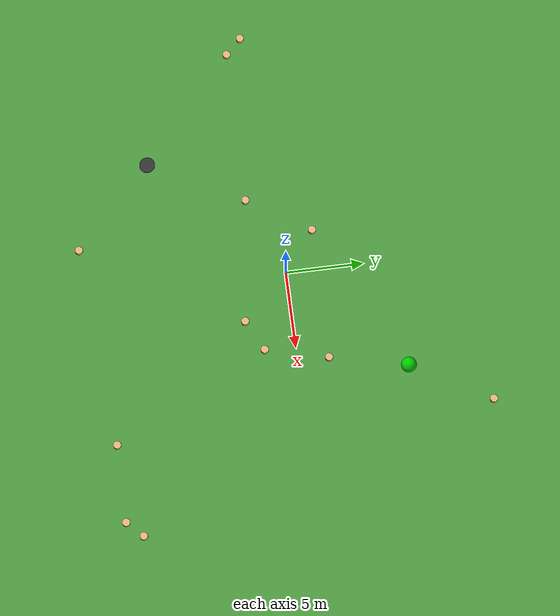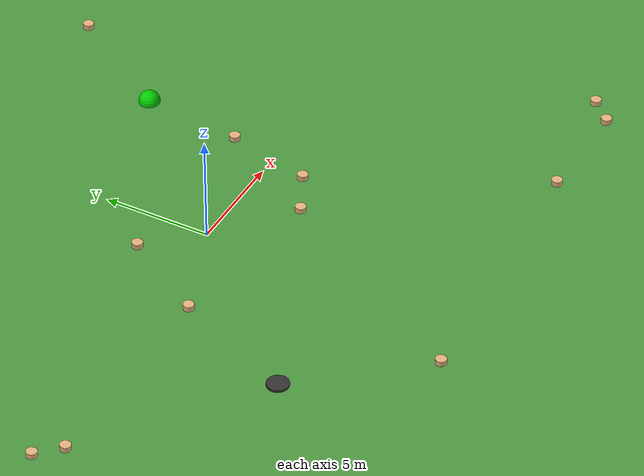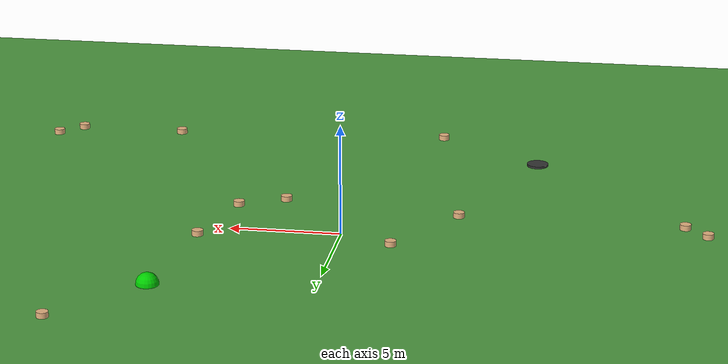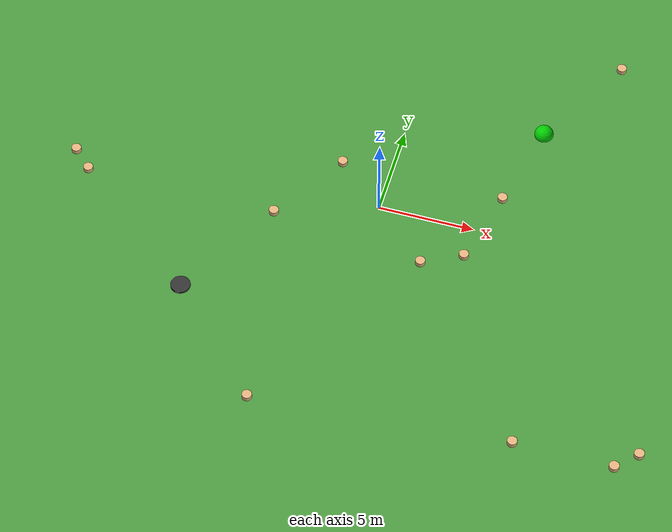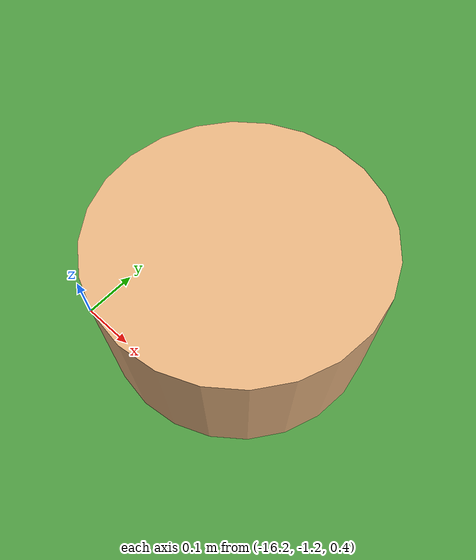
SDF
<?xml version="1.0" ?>
<sdf version="1.8">
  <world name="cow_drone_world">
    <physics name="default_physics" type="ode">
      <gravity>0 0 -9.8</gravity>
      <max_step_size>0.01</max_step_size>
      <real_time_update_rate>1000</real_time_update_rate>
    </physics>
    <plugin filename="libignition-gazebo-physics-system.so" name="ignition::gazebo::systems::Physics"></plugin>
    <plugin filename="libignition-gazebo-user-commands-system.so" name="ignition::gazebo::systems::UserCommands"></plugin>
    <plugin filename="libignition-gazebo-scene-broadcaster-system.so" name="ignition::gazebo::systems::SceneBroadcaster"></plugin>

    <light type="directional" name="sun">
      <cast_shadows>true</cast_shadows>
      <pose>0 0 10 0 0 0</pose>
      <diffuse>0.8 0.8 0.8 1</diffuse>
      <specular>0.2 0.2 0.2 1</specular>
      <attenuation>
        <range>1000</range>
        <constant>0.9</constant>
        <linear>0.01</linear>
        <quadratic>0.001</quadratic>
      </attenuation>
      <direction>-0.5 0.1 -0.9</direction>
    </light>

    <!-- Ground Plane with Grass Texture -->
    <model name="ground_plane">
      <static>true</static>
      <link name="link">
        <collision name="collision">
          <geometry>
            <plane>
              <normal>0 0 1</normal>
              <size>100 100</size>
            </plane>
          </geometry>
        </collision>
        <visual name="visual">
          <geometry>
            <plane>
              <normal>0 0 1</normal>
              <size>100 100</size>
            </plane>
          </geometry>
          <material>
            <script>
              <uri>file://media/materials/scripts/gazebo.material</uri>
              <name>Gazebo/Grass</name>
            </script>
            <ambient>0.3 0.7 0.3 1</ambient>
            <diffuse>0.3 0.7 0.3 1</diffuse>
            <specular>0.1 0.1 0.1 1</specular>
          </material>
        </visual>
      </link>
    </model>

    <!-- Goal Marker at Position 7,7 -->
    <model name="goal_marker">
      <static>true</static>
      <pose>7 7 0 0 0 0</pose>
      <link name="link">
        <visual name="visual">
          <geometry>
          <sphere>
            <radius>0.5</radius>
          </sphere>
          </geometry>
            <material>
              <ambient>0 0.8 0 1</ambient>
              <diffuse>0 0.8 0 1</diffuse>
              <specular>0.2 0.2 0.2 1</specular>
              <emissive>0 0.3 0 1</emissive>
            </material>
            </visual>
            <collision name="collision">
              <geometry>
                <sphere>
                  <radius>0.5</radius>
                </sphere>
          </geometry>
        </collision>
      </link>
    </model>

    <!-- Cow (Sphere) -->
    <model name="cow1">
      <pose>10 12 0.5 0 0 0</pose>
      <link name="body">
        <inertial>
          <mass>10.0</mass>
          <inertia>
            <ixx>1.0</ixx>
            <ixy>0</ixy>
            <ixz>0</ixz>
            <iyy>1.0</iyy>
            <iyz>0</iyz>
            <izz>1.0</izz>
          </inertia>
        </inertial>
        <collision name="collision">
          <geometry>
            <cylinder>
              <radius>0.25</radius>
              <length>0.25</length>
            </cylinder>
          </geometry>
        </collision>
        <visual name="visual">
          <geometry>
            <cylinder>
              <radius>0.25</radius>
              <length>0.25</length>
            </cylinder>
          </geometry>
          <material>
            <ambient>0.9 0.7 0.5 1</ambient>
            <diffuse>0.9 0.7 0.5 1</diffuse>
            <specular>0.9 0.7 0.5 1</specular>
          </material>
        </visual>
      </link>

        <!-- Add a velocity controller plugin -->
      <plugin filename="libignition-gazebo-velocity-control-system.so"
            name="ignition::gazebo::systems::VelocityControl">
        <topic>/cow1/cmd_vel</topic>
      </plugin>

      <plugin filename="libignition-gazebo-odometry-publisher-system.so"
            name="ignition::gazebo::systems::OdometryPublisher">
        <odom_frame>cow1/odom</odom_frame>
        <robot_base_frame>cow1</robot_base_frame>
        <odom_publish_frequency>10</odom_publish_frequency>
        <odom_topic>/cow1/odom</odom_topic>
      </plugin>
    </model>

    <!-- Cow (Sphere) -->
    <model name="cow2">
      <pose>5 -2 0.5 0 0 0</pose>
      <link name="body">
        <inertial>
          <mass>10.0</mass>
          <inertia>
            <ixx>1.0</ixx>
            <ixy>0</ixy>
            <ixz>0</ixz>
            <iyy>1.0</iyy>
            <iyz>0</iyz>
            <izz>1.0</izz>
          </inertia>
        </inertial>
        <collision name="collision">
          <geometry>
            <cylinder>
              <radius>0.25</radius>
              <length>0.25</length>
            </cylinder>
          </geometry>
        </collision>
        <visual name="visual">
          <geometry>
            <cylinder>
              <radius>0.25</radius>
              <length>0.25</length>
            </cylinder>
          </geometry>
          <material>
            <ambient>0.9 0.7 0.5 1</ambient>
            <diffuse>0.9 0.7 0.5 1</diffuse>
            <specular>0.9 0.7 0.5 1</specular>
          </material>
        </visual>
      </link>
        <!-- Add a velocity controller plugin -->
      <plugin filename="libignition-gazebo-velocity-control-system.so"
            name="ignition::gazebo::systems::VelocityControl">
        <topic>/cow2/cmd_vel</topic>
      </plugin>

      <plugin filename="libignition-gazebo-odometry-publisher-system.so"
            name="ignition::gazebo::systems::OdometryPublisher">
        <odom_frame>cow2/odom</odom_frame>
        <robot_base_frame>cow2</robot_base_frame>
        <odom_publish_frequency>10</odom_publish_frequency>
        <odom_topic>/cow2/odom</odom_topic>
      </plugin>
    </model>

    <!-- Cow (Sphere) -->
    <model name="cow3">
      <pose>15 -12 0.5 0 0 0</pose>
      <link name="body">
        <inertial>
          <mass>10.0</mass>
          <inertia>
            <ixx>1.0</ixx>
            <ixy>0</ixy>
            <ixz>0</ixz>
            <iyy>1.0</iyy>
            <iyz>0</iyz>
            <izz>1.0</izz>
          </inertia>
        </inertial>
        <collision name="collision">
          <geometry>
            <cylinder>
              <radius>0.25</radius>
              <length>0.25</length>
            </cylinder>
          </geometry>
        </collision>
        <visual name="visual">
          <geometry>
            <cylinder>
              <radius>0.25</radius>
              <length>0.25</length>
            </cylinder>
          </geometry>
          <material>
            <ambient>0.9 0.7 0.5 1</ambient>
            <diffuse>0.9 0.7 0.5 1</diffuse>
            <specular>0.9 0.7 0.5 1</specular>
          </material>
        </visual>
      </link>
        <!-- Add a velocity controller plugin -->
      <plugin filename="libignition-gazebo-velocity-control-system.so"
            name="ignition::gazebo::systems::VelocityControl">
        <topic>/cow3/cmd_vel</topic>
      </plugin>
      <plugin filename="libignition-gazebo-odometry-publisher-system.so"
            name="ignition::gazebo::systems::OdometryPublisher">
        <odom_frame>cow3/odom</odom_frame>
        <robot_base_frame>cow3</robot_base_frame>
        <odom_publish_frequency>10</odom_publish_frequency>
        <odom_topic>/cow3/odom</odom_topic>
      </plugin>
    </model>

    <!-- Cow (Sphere) -->
    <model name="cow4">
      <pose>3 -3 0.5 0 0 0</pose>
      <link name="body">
        <inertial>
          <mass>10.0</mass>
          <inertia>
            <ixx>1.0</ixx>
            <ixy>0</ixy>
            <ixz>0</ixz>
            <iyy>1.0</iyy>
            <iyz>0</iyz>
            <izz>1.0</izz>
          </inertia>
        </inertial>
        <collision name="collision">
          <geometry>
            <cylinder>
              <radius>0.25</radius>
              <length>0.25</length>
            </cylinder>
          </geometry>
        </collision>
        <visual name="visual">
          <geometry>
            <cylinder>
              <radius>0.25</radius>
              <length>0.25</length>
            </cylinder>
          </geometry>
          <material>
            <ambient>0.9 0.7 0.5 1</ambient>
            <diffuse>0.9 0.7 0.5 1</diffuse>
            <specular>0.9 0.7 0.5 1</specular>
          </material>
        </visual>
      </link>
        <!-- Add a velocity controller plugin -->
      <plugin filename="libignition-gazebo-velocity-control-system.so"
            name="ignition::gazebo::systems::VelocityControl">
        <topic>/cow4/cmd_vel</topic>
      </plugin>
      <plugin filename="libignition-gazebo-odometry-publisher-system.so"
            name="ignition::gazebo::systems::OdometryPublisher">
        <odom_frame>cow4/odom</odom_frame>
        <robot_base_frame>cow4</robot_base_frame>
        <odom_publish_frequency>10</odom_publish_frequency>
        <odom_topic>/cow4/odom</odom_topic>
      </plugin>
    </model>

    <!-- Cow (Sphere) -->
    <model name="cow5">
      <pose>16 -11 0.5 0 0 0</pose>
      <link name="body">
        <inertial>
          <mass>10.0</mass>
          <inertia>
            <ixx>1.0</ixx>
            <ixy>0</ixy>
            <ixz>0</ixz>
            <iyy>1.0</iyy>
            <iyz>0</iyz>
            <izz>1.0</izz>
          </inertia>
        </inertial>
        <collision name="collision">
          <geometry>
            <cylinder>
              <radius>0.25</radius>
              <length>0.25</length>
            </cylinder>
          </geometry>
        </collision>
        <visual name="visual">
          <geometry>
            <cylinder>
              <radius>0.25</radius>
              <length>0.25</length>
            </cylinder>
          </geometry>
          <material>
            <ambient>0.9 0.7 0.5 1</ambient>
            <diffuse>0.9 0.7 0.5 1</diffuse>
            <specular>0.9 0.7 0.5 1</specular>
          </material>
        </visual>
      </link>
        <!-- Add a velocity controller plugin -->
      <plugin filename="libignition-gazebo-velocity-control-system.so"
            name="ignition::gazebo::systems::VelocityControl">
        <topic>/cow5/cmd_vel</topic>
      </plugin>

      <plugin filename="libignition-gazebo-odometry-publisher-system.so"
            name="ignition::gazebo::systems::OdometryPublisher">
        <odom_frame>cow5/odom</odom_frame>
        <robot_base_frame>cow5</robot_base_frame>
        <odom_publish_frequency>10</odom_publish_frequency>
        <odom_topic>/cow5/odom</odom_topic>
      </plugin>
    </model>

    <!-- Cow (Sphere) -->
    <model name="cow6">
      <pose>6 2 0.5 0 0 0</pose>
      <link name="body">
        <inertial>
          <mass>10.0</mass>
          <inertia>
            <ixx>1.0</ixx>
            <ixy>0</ixy>
            <ixz>0</ixz>
            <iyy>1.0</iyy>
            <iyz>0</iyz>
            <izz>1.0</izz>
          </inertia>
        </inertial>
        <collision name="collision">
          <geometry>
            <cylinder>
              <radius>0.25</radius>
              <length>0.25</length>
            </cylinder>
          </geometry>
        </collision>
        <visual name="visual">
          <geometry>
            <cylinder>
              <radius>0.25</radius>
              <length>0.25</length>
            </cylinder>
          </geometry>
          <material>
            <ambient>0.9 0.7 0.5 1</ambient>
            <diffuse>0.9 0.7 0.5 1</diffuse>
            <specular>0.9 0.7 0.5 1</specular>
          </material>
        </visual>
      </link>
        <!-- Add a velocity controller plugin -->
      <plugin filename="libignition-gazebo-velocity-control-system.so"
            name="ignition::gazebo::systems::VelocityControl">
        <topic>/cow6/cmd_vel</topic>
      </plugin>
      <plugin filename="libignition-gazebo-odometry-publisher-system.so"
            name="ignition::gazebo::systems::OdometryPublisher">
        <odom_frame>cow6/odom</odom_frame>
        <robot_base_frame>cow6</robot_base_frame>
        <odom_publish_frequency>10</odom_publish_frequency>
        <odom_topic>/cow6/odom</odom_topic>
      </plugin>
    </model>

    <!-- Cow (Sphere) -->
    <model name="cow7">
      <pose>10 -12 0.5 0 0 0</pose>
      <link name="body">
        <inertial>
          <mass>10.0</mass>
          <inertia>
            <ixx>1.0</ixx>
            <ixy>0</ixy>
            <ixz>0</ixz>
            <iyy>1.0</iyy>
            <iyz>0</iyz>
            <izz>1.0</izz>
          </inertia>
        </inertial>
        <collision name="collision">
          <geometry>
            <cylinder>
              <radius>0.25</radius>
              <length>0.25</length>
            </cylinder>
          </geometry>
        </collision>
        <visual name="visual">
          <geometry>
            <cylinder>
              <radius>0.25</radius>
              <length>0.25</length>
            </cylinder>
          </geometry>
          <material>
            <ambient>0.9 0.7 0.5 1</ambient>
            <diffuse>0.9 0.7 0.5 1</diffuse>
            <specular>0.9 0.7 0.5 1</specular>
          </material>
        </visual>
      </link>

        <!-- Add a velocity controller plugin -->
      <plugin filename="libignition-gazebo-velocity-control-system.so"
            name="ignition::gazebo::systems::VelocityControl">
        <topic>/cow7/cmd_vel</topic>
      </plugin>

      <plugin filename="libignition-gazebo-odometry-publisher-system.so"
            name="ignition::gazebo::systems::OdometryPublisher">
        <odom_frame>cow7/odom</odom_frame>
        <robot_base_frame>cow7</robot_base_frame>
        <odom_publish_frequency>10</odom_publish_frequency>
        <odom_topic>/cow7/odom</odom_topic>
      </plugin>
    </model>

    <!-- Cow (Sphere) -->
    <model name="cow8">
      <pose>-15 -2 0.5 0 0 0</pose>
      <link name="body">
        <inertial>
          <mass>10.0</mass>
          <inertia>
            <ixx>1.0</ixx>
            <ixy>0</ixy>
            <ixz>0</ixz>
            <iyy>1.0</iyy>
            <iyz>0</iyz>
            <izz>1.0</izz>
          </inertia>
        </inertial>
        <collision name="collision">
          <geometry>
            <cylinder>
              <radius>0.25</radius>
              <length>0.25</length>
            </cylinder>
          </geometry>
        </collision>
        <visual name="visual">
          <geometry>
            <cylinder>
              <radius>0.25</radius>
              <length>0.25</length>
            </cylinder>
          </geometry>
          <material>
            <ambient>0.9 0.7 0.5 1</ambient>
            <diffuse>0.9 0.7 0.5 1</diffuse>
            <specular>0.9 0.7 0.5 1</specular>
          </material>
        </visual>
      </link>
        <!-- Add a velocity controller plugin -->
      <plugin filename="libignition-gazebo-velocity-control-system.so"
            name="ignition::gazebo::systems::VelocityControl">
        <topic>/cow8/cmd_vel</topic>
      </plugin>

      <plugin filename="libignition-gazebo-odometry-publisher-system.so"
            name="ignition::gazebo::systems::OdometryPublisher">
        <odom_frame>cow8/odom</odom_frame>
        <robot_base_frame>cow8</robot_base_frame>
        <odom_publish_frequency>10</odom_publish_frequency>
        <odom_topic>/cow8/odom</odom_topic>
      </plugin>
    </model>

    <!-- Cow (Sphere) -->
    <model name="cow9">
      <pose>-5 -2 0.5 0 0 0</pose>
      <link name="body">
        <inertial>
          <mass>10.0</mass>
          <inertia>
            <ixx>1.0</ixx>
            <ixy>0</ixy>
            <ixz>0</ixz>
            <iyy>1.0</iyy>
            <iyz>0</iyz>
            <izz>1.0</izz>
          </inertia>
        </inertial>
        <collision name="collision">
          <geometry>
            <cylinder>
              <radius>0.25</radius>
              <length>0.25</length>
            </cylinder>
          </geometry>
        </collision>
        <visual name="visual">
          <geometry>
            <cylinder>
              <radius>0.25</radius>
              <length>0.25</length>
            </cylinder>
          </geometry>
          <material>
            <ambient>0.9 0.7 0.5 1</ambient>
            <diffuse>0.9 0.7 0.5 1</diffuse>
            <specular>0.9 0.7 0.5 1</specular>
          </material>
        </visual>
      </link>
        <!-- Add a velocity controller plugin -->
      <plugin filename="libignition-gazebo-velocity-control-system.so"
            name="ignition::gazebo::systems::VelocityControl">
        <topic>/cow9/cmd_vel</topic>
      </plugin>

      <plugin filename="libignition-gazebo-odometry-publisher-system.so"
            name="ignition::gazebo::systems::OdometryPublisher">
        <odom_frame>cow9/odom</odom_frame>
        <robot_base_frame>cow9</robot_base_frame>
        <odom_publish_frequency>10</odom_publish_frequency>
        <odom_topic>/cow9/odom</odom_topic>
      </plugin>
    </model>

    <!-- Cow (Sphere) -->
    <model name="cow10">
      <pose>-3 -13 0.5 0 0 0</pose>
      <link name="body">
        <inertial>
          <mass>10.0</mass>
          <inertia>
            <ixx>1.0</ixx>
            <ixy>0</ixy>
            <ixz>0</ixz>
            <iyy>1.0</iyy>
            <iyz>0</iyz>
            <izz>1.0</izz>
          </inertia>
        </inertial>
        <collision name="collision">
          <geometry>
            <cylinder>
              <radius>0.25</radius>
              <length>0.25</length>
            </cylinder>
          </geometry>
        </collision>
        <visual name="visual">
          <geometry>
            <cylinder>
              <radius>0.25</radius>
              <length>0.25</length>
            </cylinder>
          </geometry>
          <material>
            <ambient>0.9 0.7 0.5 1</ambient>
            <diffuse>0.9 0.7 0.5 1</diffuse>
            <specular>0.9 0.7 0.5 1</specular>
          </material>
        </visual>
      </link>
        <!-- Add a velocity controller plugin -->
      <plugin filename="libignition-gazebo-velocity-control-system.so"
            name="ignition::gazebo::systems::VelocityControl">
        <topic>/cow10/cmd_vel</topic>
      </plugin>

      <plugin filename="libignition-gazebo-odometry-publisher-system.so"
            name="ignition::gazebo::systems::OdometryPublisher">
        <odom_frame>cow10/odom</odom_frame>
        <robot_base_frame>cow10</robot_base_frame>
        <odom_publish_frequency>10</odom_publish_frequency>
        <odom_topic>/cow10/odom</odom_topic>
      </plugin>
    </model>

    <!-- Cow (Sphere) -->
    <model name="cow11">
      <pose>-16 -1 0.5 0 0 0</pose>
      <link name="body">
        <inertial>
          <mass>10.0</mass>
          <inertia>
            <ixx>1.0</ixx>
            <ixy>0</ixy>
            <ixz>0</ixz>
            <iyy>1.0</iyy>
            <iyz>0</iyz>
            <izz>1.0</izz>
          </inertia>
        </inertial>
        <collision name="collision">
          <geometry>
            <cylinder>
              <radius>0.25</radius>
              <length>0.25</length>
            </cylinder>
          </geometry>
        </collision>
        <visual name="visual">
          <geometry>
            <cylinder>
              <radius>0.25</radius>
              <length>0.25</length>
            </cylinder>
          </geometry>
          <material>
            <ambient>0.9 0.7 0.5 1</ambient>
            <diffuse>0.9 0.7 0.5 1</diffuse>
            <specular>0.9 0.7 0.5 1</specular>
          </material>
        </visual>
      </link>
        <!-- Add a velocity controller plugin -->
      <plugin filename="libignition-gazebo-velocity-control-system.so"
            name="ignition::gazebo::systems::VelocityControl">
        <topic>/cow11/cmd_vel</topic>
      </plugin>

      <plugin filename="libignition-gazebo-odometry-publisher-system.so"
            name="ignition::gazebo::systems::OdometryPublisher">
        <odom_frame>cow11/odom</odom_frame>
        <robot_base_frame>cow11</robot_base_frame>
        <odom_publish_frequency>10</odom_publish_frequency>
        <odom_topic>/cow11/odom</odom_topic>
      </plugin>
    </model>

    <!-- Cow (Sphere) -->
    <model name="cow12">
      <pose>-2.5 2 0.5 0 0 0</pose>
      <link name="body">
        <inertial>
          <mass>10.0</mass>
          <inertia>
            <ixx>1.0</ixx>
            <ixy>0</ixy>
            <ixz>0</ixz>
            <iyy>1.0</iyy>
            <iyz>0</iyz>
            <izz>1.0</izz>
          </inertia>
        </inertial>
        <collision name="collision">
          <geometry>
            <cylinder>
              <radius>0.25</radius>
              <length>0.25</length>
            </cylinder>
          </geometry>
        </collision>
        <visual name="visual">
          <geometry>
            <cylinder>
              <radius>0.25</radius>
              <length>0.25</length>
            </cylinder>
          </geometry>
          <material>
            <ambient>0.9 0.7 0.5 1</ambient>
            <diffuse>0.9 0.7 0.5 1</diffuse>
            <specular>0.9 0.7 0.5 1</specular>
          </material>
        </visual>
      </link>
        <!-- Add a velocity controller plugin -->
      <plugin filename="libignition-gazebo-velocity-control-system.so"
            name="ignition::gazebo::systems::VelocityControl">
        <topic>/cow12/cmd_vel</topic>
      </plugin>

      <plugin filename="libignition-gazebo-odometry-publisher-system.so"
            name="ignition::gazebo::systems::OdometryPublisher">
        <odom_frame>cow12/odom</odom_frame>
        <robot_base_frame>cow12</robot_base_frame>
        <odom_publish_frequency>10</odom_publish_frequency>
        <odom_topic>/cow12/odom</odom_topic>
      </plugin>
    </model>

    <!-- Drone (Cylinder) -->
<model name="drone">
  <pose>-8 -8 1.0 0 0 0</pose>
  <link name="body">
    <inertial>
      <mass>1.0</mass>
      <inertia>
        <ixx>0.1</ixx>
        <ixy>0</ixy>
        <ixz>0</ixz>
        <iyy>0.1</iyy>
        <iyz>0</iyz>
        <izz>0.1</izz>
      </inertia>
    </inertial>
    <collision name="collision">
      <geometry>
        <cylinder>
          <radius>0.5</radius>
          <length>0.1</length>
        </cylinder>
      </geometry>
    </collision>
    <visual name="visual">
      <geometry>
        <cylinder>
          <radius>0.5</radius>
          <length>0.1</length>
        </cylinder>
      </geometry>
      <material>
        <ambient>0.2 0.2 0.2 1</ambient>
        <diffuse>0.2 0.2 0.2 1</diffuse>
        <specular>0.2 0.2 0.2 1</specular>
      </material>
    </visual>
  </link>
    <!-- Add a velocity controller plugin -->
    <plugin filename="libignition-gazebo-velocity-control-system.so"
            name="ignition::gazebo::systems::VelocityControl">
        <topic>/drone/cmd_vel</topic>
    </plugin>

    <plugin filename="libignition-gazebo-odometry-publisher-system.so"
    name="ignition::gazebo::systems::OdometryPublisher">
      <odom_frame>drone/odom</odom_frame>
      <robot_base_frame>drone/base_link</robot_base_frame>
      <dimensions>3</dimensions>
      <odom_publish_frequency>10</odom_publish_frequency>
      <odom_topic>/drone/odom</odom_topic>
    </plugin>

  </model>
  </world>
</sdf>
